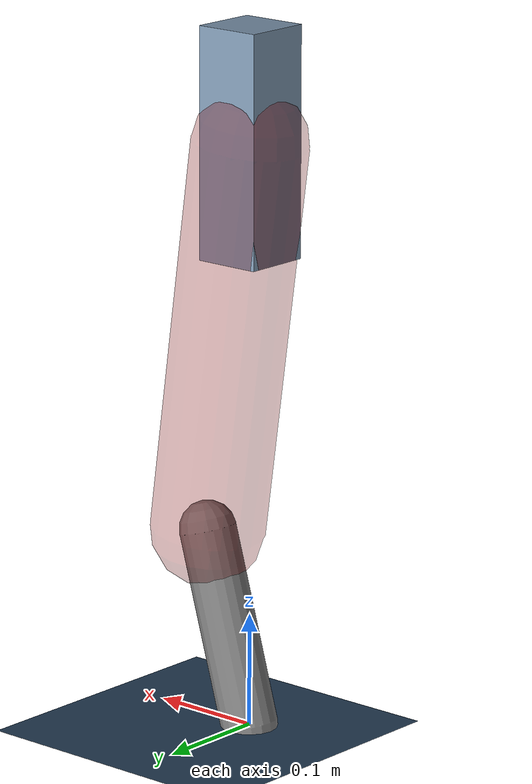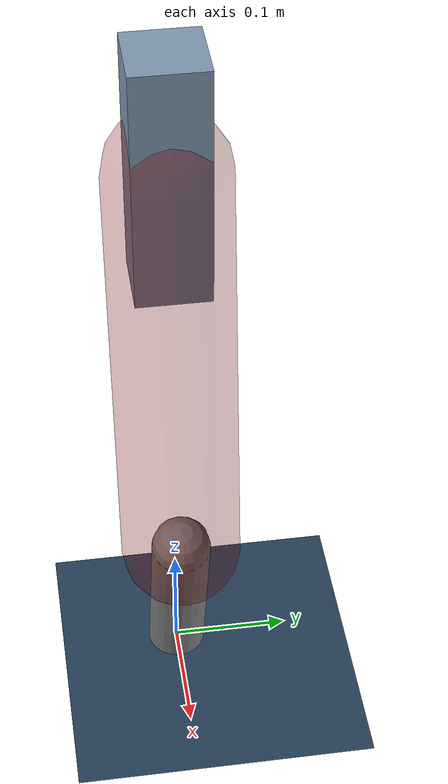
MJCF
<mujoco model="Hopper2D">
	<compiler inertiafromgeom="true" angle="radian" />
	<option timestep="0.001" integrator="implicit" cone="elliptic" solver="Newton" tolerance="1e-10" />

	<default>
		<geom contype="1" conaffinity="1" condim="3" friction="2 0.005 0.0001" solref="0.005 1" />
		<joint limited="true" damping="0.1" />
	</default>

	<asset>
		<texture name="skybox" type="skybox" builtin="gradient" rgb1=".4 .6 .8" rgb2="0 0 0" width="800" height="800" />
		<texture name="grid" type="2d" builtin="checker" rgb1=".1 .2 .3" rgb2=".2 .3 .4" width="300" height="300" mark="edge" markrgb=".2 .3 .4" />
		<material name="ground" texture="grid" texrepeat="1 1" texuniform="true" reflectance="0.1" />
		<material name="leg" rgba="0.5 0.6 0.7 1" />
	</asset>

	<worldbody>

		<geom name="floor" type="plane" size="5 5 0.25" material="ground" />

		<light directional="false" diffuse="0.8 0.8 0.8" specular="0.3 0.3 0.3" pos="0 0 2" dir="0 0 -1" />
		<light mode="targetbodycom" target="base" directional="false" diffuse="0.8 0.8 0.8" specular="0.3 0.3 0.3" pos="0 0 2" dir="0 0 -1" />

		<camera name="fixed" pos="0 -2 1" xyaxes="1 0 0 0 0 1" />
		<camera name="tracking" mode="trackcom" pos="0 -3 1" />

		<body name="root" pos="0 0 0.5139572516302138">
			<joint name="slide_x" type="slide" axis="1 0 0" range="-100 100" />
			<joint name="slide_z" type="slide" axis="0 0 1" range="0 10" />

			<body name="base" pos="0 0 0">
				<geom name="torso" type="box" size="0.03 0.03 0.1" mass="2.91" material="leg" />

				<body name="link1" pos="0 0 0" euler="0 1.433450031556144 0">
					<joint type="hinge" axis="0 -1 0" pos="0 0 0" name="hinge1" limited="true" range="-3.14 3.14" stiffness="0" damping="0.1" />
					<geom name="thigh" type="capsule" fromto="0 0 0 0.3497009374741737 0 0" size="0.05" rgba="0.5 0 0 0.3" mass="1.1258626249276864" />

					<body name="link2" pos="0.3497009374741737 0 0" euler="0 0.4156899567180482 0">
						<joint type="hinge" axis="0 -1 0" pos="0 0 0" name="hinge2" limited="true" range="-3.14 3.14" stiffness="0" damping="0.1" />
						<geom name="shank" type="capsule" fromto="0 0 0 0.17425631415604004 0 0" size="0.025" mass="0.378930682740436" />

					</body>
				</body>
			</body>
		</body>
	</worldbody>

	<actuator>
		<motor name="torque1" joint="hinge1" ctrlrange="-113.94361918060872 113.94361918060872" ctrllimited="true" gear="1" />
		<motor name="torque2" joint="hinge2" ctrlrange="-104.80104529264497 104.80104529264497" ctrllimited="true" gear="1" />
	</actuator>
</mujoco>
